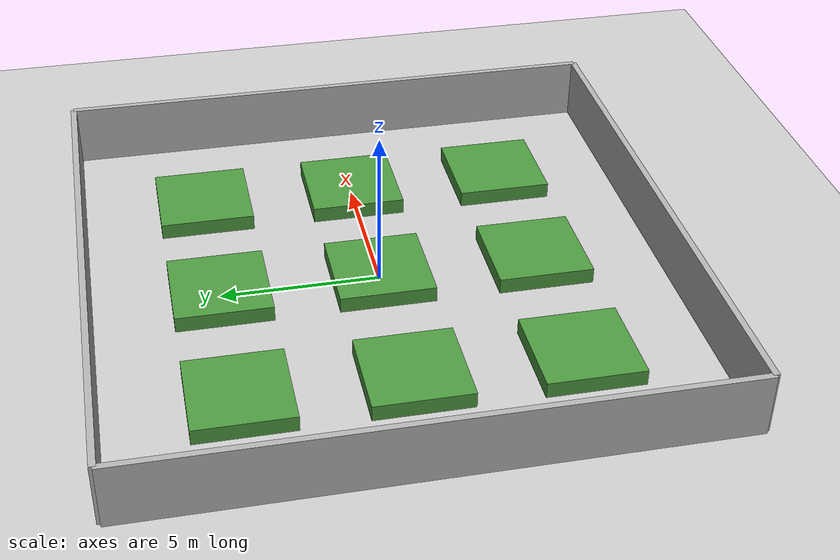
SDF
<?xml version="1.0" ?>
<sdf version="1.6">
  <world name="default">
    <include>
      <uri>model://sun</uri>
    </include>

    <include>
      <uri>model://ground_plane</uri>
    </include>

    <include>
      <name>wall_south</name>
      <uri>model://greenhouse_wall</uri>
      <pose>0 -9 0 0 0 0</pose>
    </include>
    <include>
      <name>wall_north</name>
      <uri>model://greenhouse_wall</uri>
      <pose>0 9 0 0 0 0</pose>
    </include>
    <include>
      <name>wall_east</name>
      <uri>model://greenhouse_wall</uri>
      <pose>9 0 0 0 0 1.5708</pose>
    </include>
    <include>
      <name>wall_west</name>
      <uri>model://greenhouse_wall</uri>
      <pose>-9 0 0 0 0 1.5708</pose>
    </include>

    <include>
      <name>row_1_1</name>
      <uri>model://crop_row_5x5</uri>
      <pose>-5 5 0 0 0 0</pose>
    </include>
    <include>
      <name>row_1_2</name>
      <uri>model://crop_row_5x5</uri>
      <pose>0 5 0 0 0 0</pose>
    </include>
    <include>
      <name>row_1_3</name>
      <uri>model://crop_row_5x5</uri>
      <pose>5 5 0 0 0 0</pose>
    </include>

    <include>
      <name>row_2_1</name>
      <uri>model://crop_row_5x5</uri>
      <pose>-5 0 0 0 0 0</pose>
    </include>
    <include> <name>row_2_2</name>
      <uri>model://crop_row_5x5</uri>
      <pose>0 0 0 0 0 0</pose>
    </include>
    <include>
      <name>row_2_3</name>
      <uri>model://crop_row_5x5</uri>
      <pose>5 0 0 0 0 0</pose>
    </include>

    <include>
      <name>row_3_1</name>
      <uri>model://crop_row_5x5</uri>
      <pose>-5 -5 0 0 0 0</pose>
    </include>
    <include>
      <name>row_3_2</name>
      <uri>model://crop_row_5x5</uri>
      <pose>0 -5 0 0 0 0</pose>
    </include>
    <include>
      <name>row_3_3</name>
      <uri>model://crop_row_5x5</uri>
      <pose>5 -5 0 0 0 0</pose>
    </include>

  </world>
</sdf>

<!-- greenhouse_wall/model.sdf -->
<sdf version="1.6">
  <model name="greenhouse_wall">
    <static>true</static>

    <link name="wall_link">

      <!-- Collision -->
      <collision name="collision">
        <geometry>
          <box>
            <size>18 0.2 2</size>
          </box>
        </geometry>
        <pose>0 0 1 0 0 0</pose>
      </collision>

      <!-- Visual -->
      <visual name="visual">
        <geometry>
          <box>
            <size>18 0.2 2</size>
          </box>
        </geometry>
        <pose>0 0 1 0 0 0</pose>
        <material>
          <ambient>0.7 0.7 0.7 1</ambient>
          <diffuse>0.7 0.7 0.7 1</diffuse>
        </material>
      </visual>

    </link>
  </model>
</sdf>

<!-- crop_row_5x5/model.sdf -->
<sdf version="1.6">
  <model name="crop_row_5x5">
    <static>true</static>
    <link name="link">
      <pose>0 0 0.25 0 0 0</pose>

      <collision name="collision">
        <geometry>
          <box>
            <size>3 3 0.5</size>
          </box>
        </geometry>
      </collision>

      <visual name="visual">
        <geometry>
          <box>
            <size>3 3 0.5</size>
          </box>
        </geometry>
        <material>
          <script>
            <uri>file://media/materials/scripts/gazebo.material</uri>
            <name>Gazebo/Grass</name> </script>
          </material>
      </visual>
    </link>
  </model>
</sdf>
